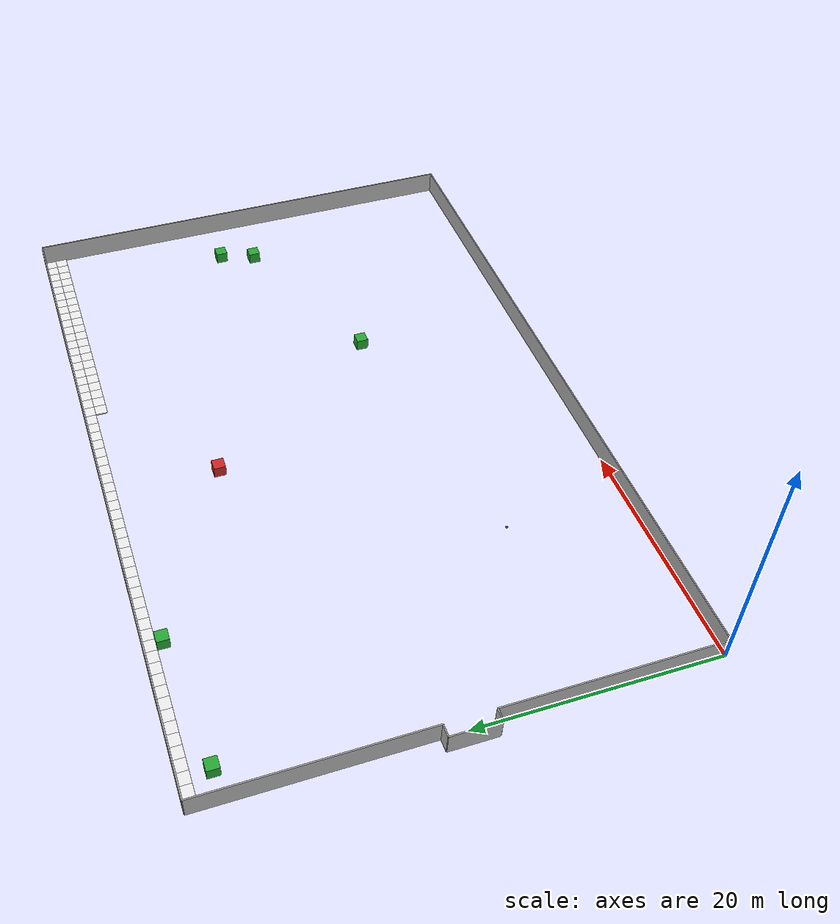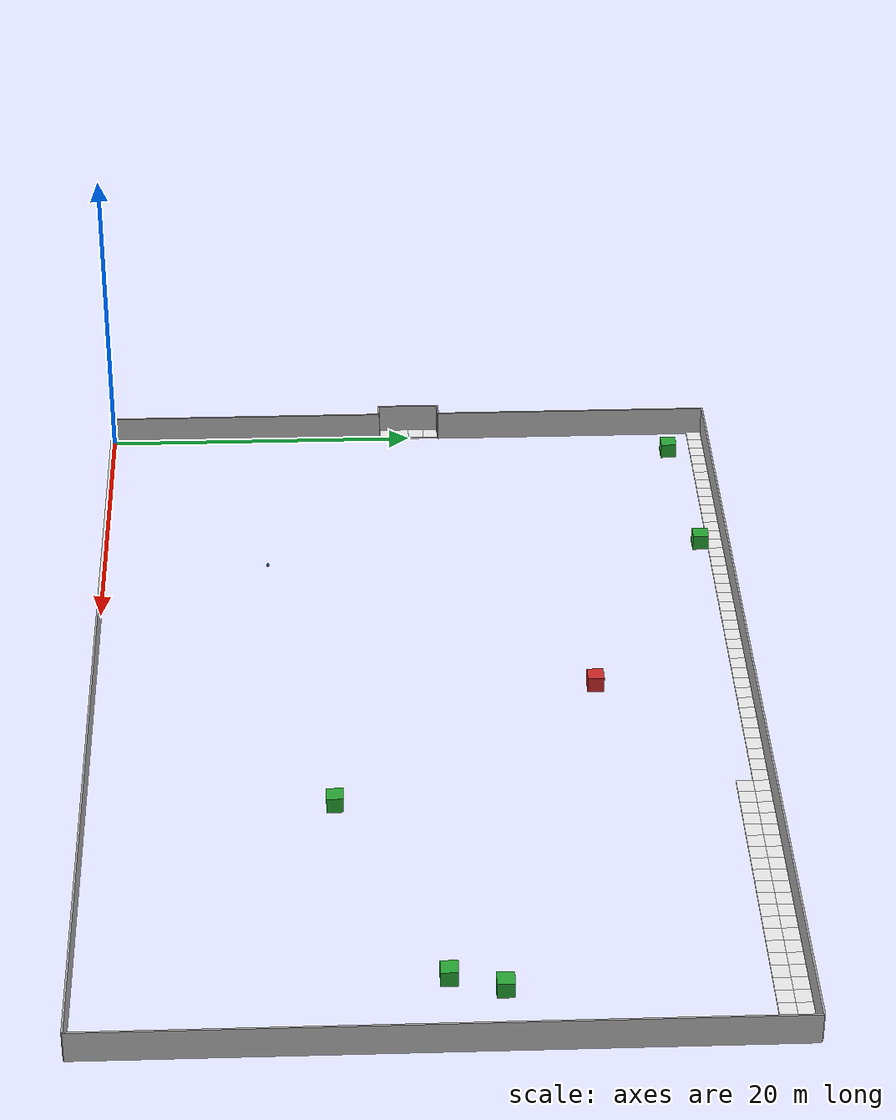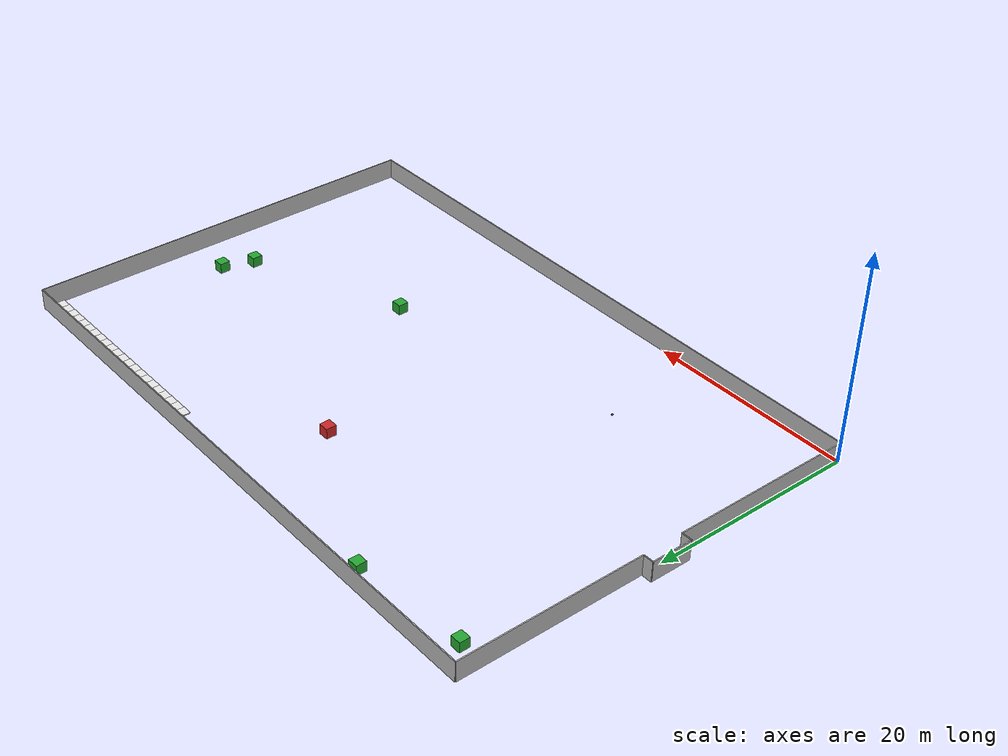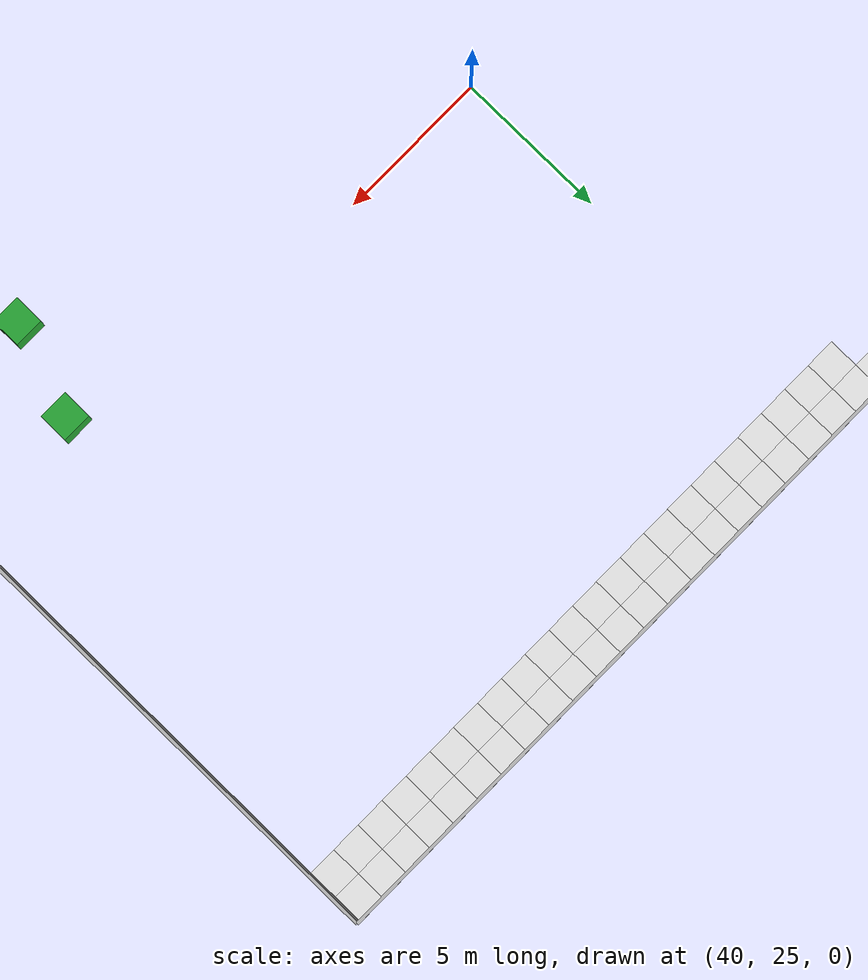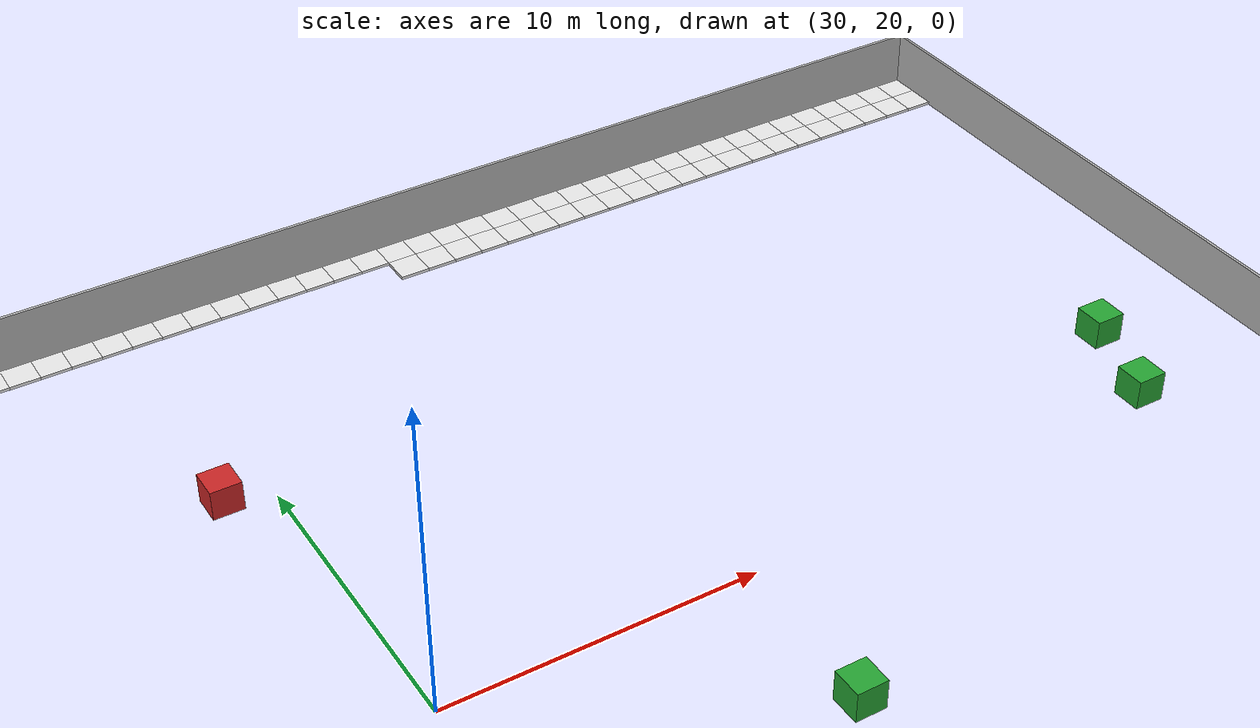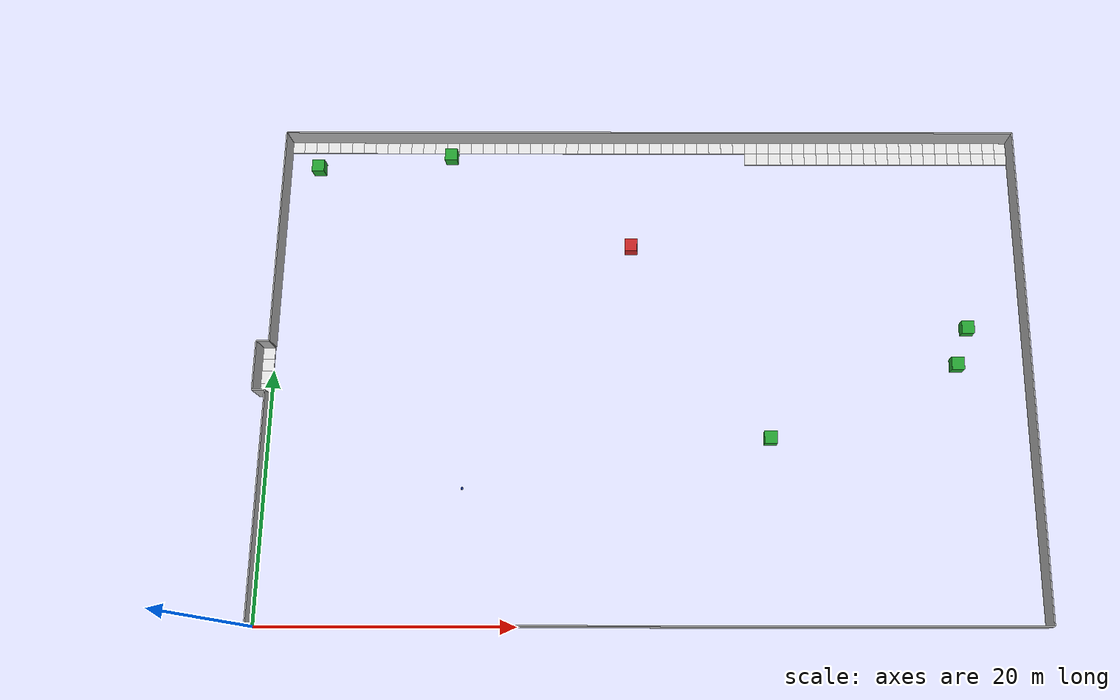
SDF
<sdf version="1.6">
 <world name="grid_world">
  <model name="cell_38_38">
   <static>true</static>
   <link name="link">
    <collision name="collision"><geometry><box><size>1 1 0.1</size></box></geometry></collision>
    <visual name="visual">
     <geometry><box><size>1 1 0.1</size></box></geometry>
     <material>
      <script><uri>file://media/materials/scripts/gazebo.material</uri><name>Gazebo/White</name></script>
     </material>
    </visual>
    <pose>38.5 38.5 0.05 0 0 0</pose>
   </link>
  </model>
  <model name="cell_39_38">
   <static>true</static>
   <link name="link">
    <collision name="collision"><geometry><box><size>1 1 0.1</size></box></geometry></collision>
    <visual name="visual">
     <geometry><box><size>1 1 0.1</size></box></geometry>
     <material>
      <script><uri>file://media/materials/scripts/gazebo.material</uri><name>Gazebo/White</name></script>
     </material>
    </visual>
    <pose>39.5 38.5 0.05 0 0 0</pose>
   </link>
  </model>
  <model name="cell_40_38">
   <static>true</static>
   <link name="link">
    <collision name="collision"><geometry><box><size>1 1 0.1</size></box></geometry></collision>
    <visual name="visual">
     <geometry><box><size>1 1 0.1</size></box></geometry>
     <material>
      <script><uri>file://media/materials/scripts/gazebo.material</uri><name>Gazebo/White</name></script>
     </material>
    </visual>
    <pose>40.5 38.5 0.05 0 0 0</pose>
   </link>
  </model>
  <model name="cell_41_38">
   <static>true</static>
   <link name="link">
    <collision name="collision"><geometry><box><size>1 1 0.1</size></box></geometry></collision>
    <visual name="visual">
     <geometry><box><size>1 1 0.1</size></box></geometry>
     <material>
      <script><uri>file://media/materials/scripts/gazebo.material</uri><name>Gazebo/White</name></script>
     </material>
    </visual>
    <pose>41.5 38.5 0.05 0 0 0</pose>
   </link>
  </model>
  <model name="cell_42_38">
   <static>true</static>
   <link name="link">
    <collision name="collision"><geometry><box><size>1 1 0.1</size></box></geometry></collision>
    <visual name="visual">
     <geometry><box><size>1 1 0.1</size></box></geometry>
     <material>
      <script><uri>file://media/materials/scripts/gazebo.material</uri><name>Gazebo/White</name></script>
     </material>
    </visual>
    <pose>42.5 38.5 0.05 0 0 0</pose>
   </link>
  </model>
  <model name="cell_43_38">
   <static>true</static>
   <link name="link">
    <collision name="collision"><geometry><box><size>1 1 0.1</size></box></geometry></collision>
    <visual name="visual">
     <geometry><box><size>1 1 0.1</size></box></geometry>
     <material>
      <script><uri>file://media/materials/scripts/gazebo.material</uri><name>Gazebo/White</name></script>
     </material>
    </visual>
    <pose>43.5 38.5 0.05 0 0 0</pose>
   </link>
  </model>
  <model name="cell_44_38">
   <static>true</static>
   <link name="link">
    <collision name="collision"><geometry><box><size>1 1 0.1</size></box></geometry></collision>
    <visual name="visual">
     <geometry><box><size>1 1 0.1</size></box></geometry>
     <material>
      <script><uri>file://media/materials/scripts/gazebo.material</uri><name>Gazebo/White</name></script>
     </material>
    </visual>
    <pose>44.5 38.5 0.05 0 0 0</pose>
   </link>
  </model>
  <model name="cell_45_38">
   <static>true</static>
   <link name="link">
    <collision name="collision"><geometry><box><size>1 1 0.1</size></box></geometry></collision>
    <visual name="visual">
     <geometry><box><size>1 1 0.1</size></box></geometry>
     <material>
      <script><uri>file://media/materials/scripts/gazebo.material</uri><name>Gazebo/White</name></script>
     </material>
    </visual>
    <pose>45.5 38.5 0.05 0 0 0</pose>
   </link>
  </model>
  <model name="cell_46_38">
   <static>true</static>
   <link name="link">
    <collision name="collision"><geometry><box><size>1 1 0.1</size></box></geometry></collision>
    <visual name="visual">
     <geometry><box><size>1 1 0.1</size></box></geometry>
     <material>
      <script><uri>file://media/materials/scripts/gazebo.material</uri><name>Gazebo/White</name></script>
     </material>
    </visual>
    <pose>46.5 38.5 0.05 0 0 0</pose>
   </link>
  </model>
  <model name="cell_47_38">
   <static>true</static>
   <link name="link">
    <collision name="collision"><geometry><box><size>1 1 0.1</size></box></geometry></collision>
    <visual name="visual">
     <geometry><box><size>1 1 0.1</size></box></geometry>
     <material>
      <script><uri>file://media/materials/scripts/gazebo.material</uri><name>Gazebo/White</name></script>
     </material>
    </visual>
    <pose>47.5 38.5 0.05 0 0 0</pose>
   </link>
  </model>
  <model name="cell_48_38">
   <static>true</static>
   <link name="link">
    <collision name="collision"><geometry><box><size>1 1 0.1</size></box></geometry></collision>
    <visual name="visual">
     <geometry><box><size>1 1 0.1</size></box></geometry>
     <material>
      <script><uri>file://media/materials/scripts/gazebo.material</uri><name>Gazebo/White</name></script>
     </material>
    </visual>
    <pose>48.5 38.5 0.05 0 0 0</pose>
   </link>
  </model>
  <model name="cell_49_38">
   <static>true</static>
   <link name="link">
    <collision name="collision"><geometry><box><size>1 1 0.1</size></box></geometry></collision>
    <visual name="visual">
     <geometry><box><size>1 1 0.1</size></box></geometry>
     <material>
      <script><uri>file://media/materials/scripts/gazebo.material</uri><name>Gazebo/White</name></script>
     </material>
    </visual>
    <pose>49.5 38.5 0.05 0 0 0</pose>
   </link>
  </model>
  <model name="cell_50_38">
   <static>true</static>
   <link name="link">
    <collision name="collision"><geometry><box><size>1 1 0.1</size></box></geometry></collision>
    <visual name="visual">
     <geometry><box><size>1 1 0.1</size></box></geometry>
     <material>
      <script><uri>file://media/materials/scripts/gazebo.material</uri><name>Gazebo/White</name></script>
     </material>
    </visual>
    <pose>50.5 38.5 0.05 0 0 0</pose>
   </link>
  </model>
  <model name="cell_51_38">
   <static>true</static>
   <link name="link">
    <collision name="collision"><geometry><box><size>1 1 0.1</size></box></geometry></collision>
    <visual name="visual">
     <geometry><box><size>1 1 0.1</size></box></geometry>
     <material>
      <script><uri>file://media/materials/scripts/gazebo.material</uri><name>Gazebo/White</name></script>
     </material>
    </visual>
    <pose>51.5 38.5 0.05 0 0 0</pose>
   </link>
  </model>
  <model name="cell_52_38">
   <static>true</static>
   <link name="link">
    <collision name="collision"><geometry><box><size>1 1 0.1</size></box></geometry></collision>
    <visual name="visual">
     <geometry><box><size>1 1 0.1</size></box></geometry>
     <material>
      <script><uri>file://media/materials/scripts/gazebo.material</uri><name>Gazebo/White</name></script>
     </material>
    </visual>
    <pose>52.5 38.5 0.05 0 0 0</pose>
   </link>
  </model>
  <model name="cell_53_38">
   <static>true</static>
   <link name="link">
    <collision name="collision"><geometry><box><size>1 1 0.1</size></box></geometry></collision>
    <visual name="visual">
     <geometry><box><size>1 1 0.1</size></box></geometry>
     <material>
      <script><uri>file://media/materials/scripts/gazebo.material</uri><name>Gazebo/White</name></script>
     </material>
    </visual>
    <pose>53.5 38.5 0.05 0 0 0</pose>
   </link>
  </model>
  <model name="cell_54_38">
   <static>true</static>
   <link name="link">
    <collision name="collision"><geometry><box><size>1 1 0.1</size></box></geometry></collision>
    <visual name="visual">
     <geometry><box><size>1 1 0.1</size></box></geometry>
     <material>
      <script><uri>file://media/materials/scripts/gazebo.material</uri><name>Gazebo/White</name></script>
     </material>
    </visual>
    <pose>54.5 38.5 0.05 0 0 0</pose>
   </link>
  </model>
  <model name="cell_55_38">
   <static>true</static>
   <link name="link">
    <collision name="collision"><geometry><box><size>1 1 0.1</size></box></geometry></collision>
    <visual name="visual">
     <geometry><box><size>1 1 0.1</size></box></geometry>
     <material>
      <script><uri>file://media/materials/scripts/gazebo.material</uri><name>Gazebo/White</name></script>
     </material>
    </visual>
    <pose>55.5 38.5 0.05 0 0 0</pose>
   </link>
  </model>
  <model name="cell_56_38">
   <static>true</static>
   <link name="link">
    <collision name="collision"><geometry><box><size>1 1 0.1</size></box></geometry></collision>
    <visual name="visual">
     <geometry><box><size>1 1 0.1</size></box></geometry>
     <material>
      <script><uri>file://media/materials/scripts/gazebo.material</uri><name>Gazebo/White</name></script>
     </material>
    </visual>
    <pose>56.5 38.5 0.05 0 0 0</pose>
   </link>
  </model>
  <model name="cell_57_38">
   <static>true</static>
   <link name="link">
    <collision name="collision"><geometry><box><size>1 1 0.1</size></box></geometry></collision>
    <visual name="visual">
     <geometry><box><size>1 1 0.1</size></box></geometry>
     <material>
      <script><uri>file://media/materials/scripts/gazebo.material</uri><name>Gazebo/White</name></script>
     </material>
    </visual>
    <pose>57.5 38.5 0.05 0 0 0</pose>
   </link>
  </model>
  <model name="cell_58_38">
   <static>true</static>
   <link name="link">
    <collision name="collision"><geometry><box><size>1 1 0.1</size></box></geometry></collision>
    <visual name="visual">
     <geometry><box><size>1 1 0.1</size></box></geometry>
     <material>
      <script><uri>file://media/materials/scripts/gazebo.material</uri><name>Gazebo/White</name></script>
     </material>
    </visual>
    <pose>58.5 38.5 0.05 0 0 0</pose>
   </link>
  </model>
  <model name="cell_59_38">
   <static>true</static>
   <link name="link">
    <collision name="collision"><geometry><box><size>1 1 0.1</size></box></geometry></collision>
    <visual name="visual">
     <geometry><box><size>1 1 0.1</size></box></geometry>
     <material>
      <script><uri>file://media/materials/scripts/gazebo.material</uri><name>Gazebo/White</name></script>
     </material>
    </visual>
    <pose>59.5 38.5 0.05 0 0 0</pose>
   </link>
  </model>
  <model name="cell_0_39">
   <static>true</static>
   <link name="link">
    <collision name="collision"><geometry><box><size>1 1 0.1</size></box></geometry></collision>
    <visual name="visual">
     <geometry><box><size>1 1 0.1</size></box></geometry>
     <material>
      <script><uri>file://media/materials/scripts/gazebo.material</uri><name>Gazebo/White</name></script>
     </material>
    </visual>
    <pose>0.5 39.5 0.05 0 0 0</pose>
   </link>
  </model>
  <model name="cell_1_39">
   <static>true</static>
   <link name="link">
    <collision name="collision"><geometry><box><size>1 1 0.1</size></box></geometry></collision>
    <visual name="visual">
     <geometry><box><size>1 1 0.1</size></box></geometry>
     <material>
      <script><uri>file://media/materials/scripts/gazebo.material</uri><name>Gazebo/White</name></script>
     </material>
    </visual>
    <pose>1.5 39.5 0.05 0 0 0</pose>
   </link>
  </model>
  <model name="cell_2_39">
   <static>true</static>
   <link name="link">
    <collision name="collision"><geometry><box><size>1 1 0.1</size></box></geometry></collision>
    <visual name="visual">
     <geometry><box><size>1 1 0.1</size></box></geometry>
     <material>
      <script><uri>file://media/materials/scripts/gazebo.material</uri><name>Gazebo/White</name></script>
     </material>
    </visual>
    <pose>2.5 39.5 0.05 0 0 0</pose>
   </link>
  </model>
  <model name="cell_3_39">
   <static>true</static>
   <link name="link">
    <collision name="collision"><geometry><box><size>1 1 0.1</size></box></geometry></collision>
    <visual name="visual">
     <geometry><box><size>1 1 0.1</size></box></geometry>
     <material>
      <script><uri>file://media/materials/scripts/gazebo.material</uri><name>Gazebo/White</name></script>
     </material>
    </visual>
    <pose>3.5 39.5 0.05 0 0 0</pose>
   </link>
  </model>
  <model name="cell_4_39">
   <static>true</static>
   <link name="link">
    <collision name="collision"><geometry><box><size>1 1 0.1</size></box></geometry></collision>
    <visual name="visual">
     <geometry><box><size>1 1 0.1</size></box></geometry>
     <material>
      <script><uri>file://media/materials/scripts/gazebo.material</uri><name>Gazebo/White</name></script>
     </material>
    </visual>
    <pose>4.5 39.5 0.05 0 0 0</pose>
   </link>
  </model>
  <model name="cell_5_39">
   <static>true</static>
   <link name="link">
    <collision name="collision"><geometry><box><size>1 1 0.1</size></box></geometry></collision>
    <visual name="visual">
     <geometry><box><size>1 1 0.1</size></box></geometry>
     <material>
      <script><uri>file://media/materials/scripts/gazebo.material</uri><name>Gazebo/White</name></script>
     </material>
    </visual>
    <pose>5.5 39.5 0.05 0 0 0</pose>
   </link>
  </model>
  <model name="cell_6_39">
   <static>true</static>
   <link name="link">
    <collision name="collision"><geometry><box><size>1 1 0.1</size></box></geometry></collision>
    <visual name="visual">
     <geometry><box><size>1 1 0.1</size></box></geometry>
     <material>
      <script><uri>file://media/materials/scripts/gazebo.material</uri><name>Gazebo/White</name></script>
     </material>
    </visual>
    <pose>6.5 39.5 0.05 0 0 0</pose>
   </link>
  </model>
  <model name="cell_7_39">
   <static>true</static>
   <link name="link">
    <collision name="collision"><geometry><box><size>1 1 0.1</size></box></geometry></collision>
    <visual name="visual">
     <geometry><box><size>1 1 0.1</size></box></geometry>
     <material>
      <script><uri>file://media/materials/scripts/gazebo.material</uri><name>Gazebo/White</name></script>
     </material>
    </visual>
    <pose>7.5 39.5 0.05 0 0 0</pose>
   </link>
  </model>
  <model name="cell_8_39">
   <static>true</static>
   <link name="link">
    <collision name="collision"><geometry><box><size>1 1 0.1</size></box></geometry></collision>
    <visual name="visual">
     <geometry><box><size>1 1 0.1</size></box></geometry>
     <material>
      <script><uri>file://media/materials/scripts/gazebo.material</uri><name>Gazebo/White</name></script>
     </material>
    </visual>
    <pose>8.5 39.5 0.05 0 0 0</pose>
   </link>
  </model>
  <model name="cell_9_39">
   <static>true</static>
   <link name="link">
    <collision name="collision"><geometry><box><size>1 1 0.1</size></box></geometry></collision>
    <visual name="visual">
     <geometry><box><size>1 1 0.1</size></box></geometry>
     <material>
      <script><uri>file://media/materials/scripts/gazebo.material</uri><name>Gazebo/White</name></script>
     </material>
    </visual>
    <pose>9.5 39.5 0.05 0 0 0</pose>
   </link>
  </model>
  <model name="cell_10_39">
   <static>true</static>
   <link name="link">
    <collision name="collision"><geometry><box><size>1 1 0.1</size></box></geometry></collision>
    <visual name="visual">
     <geometry><box><size>1 1 0.1</size></box></geometry>
     <material>
      <script><uri>file://media/materials/scripts/gazebo.material</uri><name>Gazebo/White</name></script>
     </material>
    </visual>
    <pose>10.5 39.5 0.05 0 0 0</pose>
   </link>
  </model>
  <model name="cell_11_39">
   <static>true</static>
   <link name="link">
    <collision name="collision"><geometry><box><size>1 1 0.1</size></box></geometry></collision>
    <visual name="visual">
     <geometry><box><size>1 1 0.1</size></box></geometry>
     <material>
      <script><uri>file://media/materials/scripts/gazebo.material</uri><name>Gazebo/White</name></script>
     </material>
    </visual>
    <pose>11.5 39.5 0.05 0 0 0</pose>
   </link>
  </model>
  <model name="cell_12_39">
   <static>true</static>
   <link name="link">
    <collision name="collision"><geometry><box><size>1 1 0.1</size></box></geometry></collision>
    <visual name="visual">
     <geometry><box><size>1 1 0.1</size></box></geometry>
     <material>
      <script><uri>file://media/materials/scripts/gazebo.material</uri><name>Gazebo/White</name></script>
     </material>
    </visual>
    <pose>12.5 39.5 0.05 0 0 0</pose>
   </link>
  </model>
  <model name="cell_13_39">
   <static>true</static>
   <link name="link">
    <collision name="collision"><geometry><box><size>1 1 0.1</size></box></geometry></collision>
    <visual name="visual">
     <geometry><box><size>1 1 0.1</size></box></geometry>
     <material>
      <script><uri>file://media/materials/scripts/gazebo.material</uri><name>Gazebo/White</name></script>
     </material>
    </visual>
    <pose>13.5 39.5 0.05 0 0 0</pose>
   </link>
  </model>
  <model name="cell_14_39">
   <static>true</static>
   <link name="link">
    <collision name="collision"><geometry><box><size>1 1 0.1</size></box></geometry></collision>
    <visual name="visual">
     <geometry><box><size>1 1 0.1</size></box></geometry>
     <material>
      <script><uri>file://media/materials/scripts/gazebo.material</uri><name>Gazebo/White</name></script>
     </material>
    </visual>
    <pose>14.5 39.5 0.05 0 0 0</pose>
   </link>
  </model>
  <model name="cell_15_39">
   <static>true</static>
   <link name="link">
    <collision name="collision"><geometry><box><size>1 1 0.1</size></box></geometry></collision>
    <visual name="visual">
     <geometry><box><size>1 1 0.1</size></box></geometry>
     <material>
      <script><uri>file://media/materials/scripts/gazebo.material</uri><name>Gazebo/White</name></script>
     </material>
    </visual>
    <pose>15.5 39.5 0.05 0 0 0</pose>
   </link>
  </model>
  <model name="cell_16_39">
   <static>true</static>
   <link name="link">
    <collision name="collision"><geometry><box><size>1 1 0.1</size></box></geometry></collision>
    <visual name="visual">
     <geometry><box><size>1 1 0.1</size></box></geometry>
     <material>
      <script><uri>file://media/materials/scripts/gazebo.material</uri><name>Gazebo/White</name></script>
     </material>
    </visual>
    <pose>16.5 39.5 0.05 0 0 0</pose>
   </link>
  </model>
  <model name="cell_17_39">
   <static>true</static>
   <link name="link">
    <collision name="collision"><geometry><box><size>1 1 0.1</size></box></geometry></collision>
    <visual name="visual">
     <geometry><box><size>1 1 0.1</size></box></geometry>
     <material>
      <script><uri>file://media/materials/scripts/gazebo.material</uri><name>Gazebo/White</name></script>
     </material>
    </visual>
    <pose>17.5 39.5 0.05 0 0 0</pose>
   </link>
  </model>
  <model name="cell_18_39">
   <static>true</static>
   <link name="link">
    <collision name="collision"><geometry><box><size>1 1 0.1</size></box></geometry></collision>
    <visual name="visual">
     <geometry><box><size>1 1 0.1</size></box></geometry>
     <material>
      <script><uri>file://media/materials/scripts/gazebo.material</uri><name>Gazebo/White</name></script>
     </material>
    </visual>
    <pose>18.5 39.5 0.05 0 0 0</pose>
   </link>
  </model>
  <model name="cell_19_39">
   <static>true</static>
   <link name="link">
    <collision name="collision"><geometry><box><size>1 1 0.1</size></box></geometry></collision>
    <visual name="visual">
     <geometry><box><size>1 1 0.1</size></box></geometry>
     <material>
      <script><uri>file://media/materials/scripts/gazebo.material</uri><name>Gazebo/White</name></script>
     </material>
    </visual>
    <pose>19.5 39.5 0.05 0 0 0</pose>
   </link>
  </model>
  <model name="cell_20_39">
   <static>true</static>
   <link name="link">
    <collision name="collision"><geometry><box><size>1 1 0.1</size></box></geometry></collision>
    <visual name="visual">
     <geometry><box><size>1 1 0.1</size></box></geometry>
     <material>
      <script><uri>file://media/materials/scripts/gazebo.material</uri><name>Gazebo/White</name></script>
     </material>
    </visual>
    <pose>20.5 39.5 0.05 0 0 0</pose>
   </link>
  </model>
  <model name="cell_21_39">
   <static>true</static>
   <link name="link">
    <collision name="collision"><geometry><box><size>1 1 0.1</size></box></geometry></collision>
    <visual name="visual">
     <geometry><box><size>1 1 0.1</size></box></geometry>
     <material>
      <script><uri>file://media/materials/scripts/gazebo.material</uri><name>Gazebo/White</name></script>
     </material>
    </visual>
    <pose>21.5 39.5 0.05 0 0 0</pose>
   </link>
  </model>
  <model name="cell_22_39">
   <static>true</static>
   <link name="link">
    <collision name="collision"><geometry><box><size>1 1 0.1</size></box></geometry></collision>
    <visual name="visual">
     <geometry><box><size>1 1 0.1</size></box></geometry>
     <material>
      <script><uri>file://media/materials/scripts/gazebo.material</uri><name>Gazebo/White</name></script>
     </material>
    </visual>
    <pose>22.5 39.5 0.05 0 0 0</pose>
   </link>
  </model>
  <model name="cell_23_39">
   <static>true</static>
   <link name="link">
    <collision name="collision"><geometry><box><size>1 1 0.1</size></box></geometry></collision>
    <visual name="visual">
     <geometry><box><size>1 1 0.1</size></box></geometry>
     <material>
      <script><uri>file://media/materials/scripts/gazebo.material</uri><name>Gazebo/White</name></script>
     </material>
    </visual>
    <pose>23.5 39.5 0.05 0 0 0</pose>
   </link>
  </model>
  <model name="cell_24_39">
   <static>true</static>
   <link name="link">
    <collision name="collision"><geometry><box><size>1 1 0.1</size></box></geometry></collision>
    <visual name="visual">
     <geometry><box><size>1 1 0.1</size></box></geometry>
     <material>
      <script><uri>file://media/materials/scripts/gazebo.material</uri><name>Gazebo/White</name></script>
     </material>
    </visual>
    <pose>24.5 39.5 0.05 0 0 0</pose>
   </link>
  </model>
  <model name="cell_25_39">
   <static>true</static>
   <link name="link">
    <collision name="collision"><geometry><box><size>1 1 0.1</size></box></geometry></collision>
    <visual name="visual">
     <geometry><box><size>1 1 0.1</size></box></geometry>
     <material>
      <script><uri>file://media/materials/scripts/gazebo.material</uri><name>Gazebo/White</name></script>
     </material>
    </visual>
    <pose>25.5 39.5 0.05 0 0 0</pose>
   </link>
  </model>
  <model name="cell_26_39">
   <static>true</static>
   <link name="link">
    <collision name="collision"><geometry><box><size>1 1 0.1</size></box></geometry></collision>
    <visual name="visual">
     <geometry><box><size>1 1 0.1</size></box></geometry>
     <material>
      <script><uri>file://media/materials/scripts/gazebo.material</uri><name>Gazebo/White</name></script>
     </material>
    </visual>
    <pose>26.5 39.5 0.05 0 0 0</pose>
   </link>
  </model>
  <model name="cell_27_39">
   <static>true</static>
   <link name="link">
    <collision name="collision"><geometry><box><size>1 1 0.1</size></box></geometry></collision>
    <visual name="visual">
     <geometry><box><size>1 1 0.1</size></box></geometry>
     <material>
      <script><uri>file://media/materials/scripts/gazebo.material</uri><name>Gazebo/White</name></script>
     </material>
    </visual>
    <pose>27.5 39.5 0.05 0 0 0</pose>
   </link>
  </model>
  <model name="cell_28_39">
   <static>true</static>
   <link name="link">
    <collision name="collision"><geometry><box><size>1 1 0.1</size></box></geometry></collision>
    <visual name="visual">
     <geometry><box><size>1 1 0.1</size></box></geometry>
     <material>
      <script><uri>file://media/materials/scripts/gazebo.material</uri><name>Gazebo/White</name></script>
     </material>
    </visual>
    <pose>28.5 39.5 0.05 0 0 0</pose>
   </link>
  </model>
  <model name="cell_29_39">
   <static>true</static>
   <link name="link">
    <collision name="collision"><geometry><box><size>1 1 0.1</size></box></geometry></collision>
    <visual name="visual">
     <geometry><box><size>1 1 0.1</size></box></geometry>
     <material>
      <script><uri>file://media/materials/scripts/gazebo.material</uri><name>Gazebo/White</name></script>
     </material>
    </visual>
    <pose>29.5 39.5 0.05 0 0 0</pose>
   </link>
  </model>
  <model name="cell_30_39">
   <static>true</static>
   <link name="link">
    <collision name="collision"><geometry><box><size>1 1 0.1</size></box></geometry></collision>
    <visual name="visual">
     <geometry><box><size>1 1 0.1</size></box></geometry>
     <material>
      <script><uri>file://media/materials/scripts/gazebo.material</uri><name>Gazebo/White</name></script>
     </material>
    </visual>
    <pose>30.5 39.5 0.05 0 0 0</pose>
   </link>
  </model>
  <model name="cell_31_39">
   <static>true</static>
   <link name="link">
    <collision name="collision"><geometry><box><size>1 1 0.1</size></box></geometry></collision>
    <visual name="visual">
     <geometry><box><size>1 1 0.1</size></box></geometry>
     <material>
      <script><uri>file://media/materials/scripts/gazebo.material</uri><name>Gazebo/White</name></script>
     </material>
    </visual>
    <pose>31.5 39.5 0.05 0 0 0</pose>
   </link>
  </model>
  <model name="cell_32_39">
   <static>true</static>
   <link name="link">
    <collision name="collision"><geometry><box><size>1 1 0.1</size></box></geometry></collision>
    <visual name="visual">
     <geometry><box><size>1 1 0.1</size></box></geometry>
     <material>
      <script><uri>file://media/materials/scripts/gazebo.material</uri><name>Gazebo/White</name></script>
     </material>
    </visual>
    <pose>32.5 39.5 0.05 0 0 0</pose>
   </link>
  </model>
  <model name="cell_33_39">
   <static>true</static>
   <link name="link">
    <collision name="collision"><geometry><box><size>1 1 0.1</size></box></geometry></collision>
    <visual name="visual">
     <geometry><box><size>1 1 0.1</size></box></geometry>
     <material>
      <script><uri>file://media/materials/scripts/gazebo.material</uri><name>Gazebo/White</name></script>
     </material>
    </visual>
    <pose>33.5 39.5 0.05 0 0 0</pose>
   </link>
  </model>
  <model name="cell_34_39">
   <static>true</static>
   <link name="link">
    <collision name="collision"><geometry><box><size>1 1 0.1</size></box></geometry></collision>
    <visual name="visual">
     <geometry><box><size>1 1 0.1</size></box></geometry>
     <material>
      <script><uri>file://media/materials/scripts/gazebo.material</uri><name>Gazebo/White</name></script>
     </material>
    </visual>
    <pose>34.5 39.5 0.05 0 0 0</pose>
   </link>
  </model>
  <model name="cell_35_39">
   <static>true</static>
   <link name="link">
    <collision name="collision"><geometry><box><size>1 1 0.1</size></box></geometry></collision>
    <visual name="visual">
     <geometry><box><size>1 1 0.1</size></box></geometry>
     <material>
      <script><uri>file://media/materials/scripts/gazebo.material</uri><name>Gazebo/White</name></script>
     </material>
    </visual>
    <pose>35.5 39.5 0.05 0 0 0</pose>
   </link>
  </model>
  <model name="cell_36_39">
   <static>true</static>
   <link name="link">
    <collision name="collision"><geometry><box><size>1 1 0.1</size></box></geometry></collision>
    <visual name="visual">
     <geometry><box><size>1 1 0.1</size></box></geometry>
     <material>
      <script><uri>file://media/materials/scripts/gazebo.material</uri><name>Gazebo/White</name></script>
     </material>
    </visual>
    <pose>36.5 39.5 0.05 0 0 0</pose>
   </link>
  </model>
  <model name="cell_37_39">
   <static>true</static>
   <link name="link">
    <collision name="collision"><geometry><box><size>1 1 0.1</size></box></geometry></collision>
    <visual name="visual">
     <geometry><box><size>1 1 0.1</size></box></geometry>
     <material>
      <script><uri>file://media/materials/scripts/gazebo.material</uri><name>Gazebo/White</name></script>
     </material>
    </visual>
    <pose>37.5 39.5 0.05 0 0 0</pose>
   </link>
  </model>
  <model name="cell_38_39">
   <static>true</static>
   <link name="link">
    <collision name="collision"><geometry><box><size>1 1 0.1</size></box></geometry></collision>
    <visual name="visual">
     <geometry><box><size>1 1 0.1</size></box></geometry>
     <material>
      <script><uri>file://media/materials/scripts/gazebo.material</uri><name>Gazebo/White</name></script>
     </material>
    </visual>
    <pose>38.5 39.5 0.05 0 0 0</pose>
   </link>
  </model>
  <model name="cell_39_39">
   <static>true</static>
   <link name="link">
    <collision name="collision"><geometry><box><size>1 1 0.1</size></box></geometry></collision>
    <visual name="visual">
     <geometry><box><size>1 1 0.1</size></box></geometry>
     <material>
      <script><uri>file://media/materials/scripts/gazebo.material</uri><name>Gazebo/White</name></script>
     </material>
    </visual>
    <pose>39.5 39.5 0.05 0 0 0</pose>
   </link>
  </model>
  <model name="cell_40_39">
   <static>true</static>
   <link name="link">
    <collision name="collision"><geometry><box><size>1 1 0.1</size></box></geometry></collision>
    <visual name="visual">
     <geometry><box><size>1 1 0.1</size></box></geometry>
     <material>
      <script><uri>file://media/materials/scripts/gazebo.material</uri><name>Gazebo/White</name></script>
     </material>
    </visual>
    <pose>40.5 39.5 0.05 0 0 0</pose>
   </link>
  </model>
  <model name="cell_41_39">
   <static>true</static>
   <link name="link">
    <collision name="collision"><geometry><box><size>1 1 0.1</size></box></geometry></collision>
    <visual name="visual">
     <geometry><box><size>1 1 0.1</size></box></geometry>
     <material>
      <script><uri>file://media/materials/scripts/gazebo.material</uri><name>Gazebo/White</name></script>
     </material>
    </visual>
    <pose>41.5 39.5 0.05 0 0 0</pose>
   </link>
  </model>
  <model name="cell_42_39">
   <static>true</static>
   <link name="link">
    <collision name="collision"><geometry><box><size>1 1 0.1</size></box></geometry></collision>
    <visual name="visual">
     <geometry><box><size>1 1 0.1</size></box></geometry>
     <material>
      <script><uri>file://media/materials/scripts/gazebo.material</uri><name>Gazebo/White</name></script>
     </material>
    </visual>
    <pose>42.5 39.5 0.05 0 0 0</pose>
   </link>
  </model>
  <model name="cell_43_39">
   <static>true</static>
   <link name="link">
    <collision name="collision"><geometry><box><size>1 1 0.1</size></box></geometry></collision>
    <visual name="visual">
     <geometry><box><size>1 1 0.1</size></box></geometry>
     <material>
      <script><uri>file://media/materials/scripts/gazebo.material</uri><name>Gazebo/White</name></script>
     </material>
    </visual>
    <pose>43.5 39.5 0.05 0 0 0</pose>
   </link>
  </model>
  <model name="cell_44_39">
   <static>true</static>
   <link name="link">
    <collision name="collision"><geometry><box><size>1 1 0.1</size></box></geometry></collision>
    <visual name="visual">
     <geometry><box><size>1 1 0.1</size></box></geometry>
     <material>
      <script><uri>file://media/materials/scripts/gazebo.material</uri><name>Gazebo/White</name></script>
     </material>
    </visual>
    <pose>44.5 39.5 0.05 0 0 0</pose>
   </link>
  </model>
  <model name="cell_45_39">
   <static>true</static>
   <link name="link">
    <collision name="collision"><geometry><box><size>1 1 0.1</size></box></geometry></collision>
    <visual name="visual">
     <geometry><box><size>1 1 0.1</size></box></geometry>
     <material>
      <script><uri>file://media/materials/scripts/gazebo.material</uri><name>Gazebo/White</name></script>
     </material>
    </visual>
    <pose>45.5 39.5 0.05 0 0 0</pose>
   </link>
  </model>
  <model name="cell_46_39">
   <static>true</static>
   <link name="link">
    <collision name="collision"><geometry><box><size>1 1 0.1</size></box></geometry></collision>
    <visual name="visual">
     <geometry><box><size>1 1 0.1</size></box></geometry>
     <material>
      <script><uri>file://media/materials/scripts/gazebo.material</uri><name>Gazebo/White</name></script>
     </material>
    </visual>
    <pose>46.5 39.5 0.05 0 0 0</pose>
   </link>
  </model>
  <model name="cell_47_39">
   <static>true</static>
   <link name="link">
    <collision name="collision"><geometry><box><size>1 1 0.1</size></box></geometry></collision>
    <visual name="visual">
     <geometry><box><size>1 1 0.1</size></box></geometry>
     <material>
      <script><uri>file://media/materials/scripts/gazebo.material</uri><name>Gazebo/White</name></script>
     </material>
    </visual>
    <pose>47.5 39.5 0.05 0 0 0</pose>
   </link>
  </model>
  <model name="cell_48_39">
   <static>true</static>
   <link name="link">
    <collision name="collision"><geometry><box><size>1 1 0.1</size></box></geometry></collision>
    <visual name="visual">
     <geometry><box><size>1 1 0.1</size></box></geometry>
     <material>
      <script><uri>file://media/materials/scripts/gazebo.material</uri><name>Gazebo/White</name></script>
     </material>
    </visual>
    <pose>48.5 39.5 0.05 0 0 0</pose>
   </link>
  </model>
  <model name="cell_49_39">
   <static>true</static>
   <link name="link">
    <collision name="collision"><geometry><box><size>1 1 0.1</size></box></geometry></collision>
    <visual name="visual">
     <geometry><box><size>1 1 0.1</size></box></geometry>
     <material>
      <script><uri>file://media/materials/scripts/gazebo.material</uri><name>Gazebo/White</name></script>
     </material>
    </visual>
    <pose>49.5 39.5 0.05 0 0 0</pose>
   </link>
  </model>
  <model name="cell_50_39">
   <static>true</static>
   <link name="link">
    <collision name="collision"><geometry><box><size>1 1 0.1</size></box></geometry></collision>
    <visual name="visual">
     <geometry><box><size>1 1 0.1</size></box></geometry>
     <material>
      <script><uri>file://media/materials/scripts/gazebo.material</uri><name>Gazebo/White</name></script>
     </material>
    </visual>
    <pose>50.5 39.5 0.05 0 0 0</pose>
   </link>
  </model>
  <model name="cell_51_39">
   <static>true</static>
   <link name="link">
    <collision name="collision"><geometry><box><size>1 1 0.1</size></box></geometry></collision>
    <visual name="visual">
     <geometry><box><size>1 1 0.1</size></box></geometry>
     <material>
      <script><uri>file://media/materials/scripts/gazebo.material</uri><name>Gazebo/White</name></script>
     </material>
    </visual>
    <pose>51.5 39.5 0.05 0 0 0</pose>
   </link>
  </model>
  <model name="cell_52_39">
   <static>true</static>
   <link name="link">
    <collision name="collision"><geometry><box><size>1 1 0.1</size></box></geometry></collision>
    <visual name="visual">
     <geometry><box><size>1 1 0.1</size></box></geometry>
     <material>
      <script><uri>file://media/materials/scripts/gazebo.material</uri><name>Gazebo/White</name></script>
     </material>
    </visual>
    <pose>52.5 39.5 0.05 0 0 0</pose>
   </link>
  </model>
  <model name="cell_53_39">
   <static>true</static>
   <link name="link">
    <collision name="collision"><geometry><box><size>1 1 0.1</size></box></geometry></collision>
    <visual name="visual">
     <geometry><box><size>1 1 0.1</size></box></geometry>
     <material>
      <script><uri>file://media/materials/scripts/gazebo.material</uri><name>Gazebo/White</name></script>
     </material>
    </visual>
    <pose>53.5 39.5 0.05 0 0 0</pose>
   </link>
  </model>
  <model name="cell_54_39">
   <static>true</static>
   <link name="link">
    <collision name="collision"><geometry><box><size>1 1 0.1</size></box></geometry></collision>
    <visual name="visual">
     <geometry><box><size>1 1 0.1</size></box></geometry>
     <material>
      <script><uri>file://media/materials/scripts/gazebo.material</uri><name>Gazebo/White</name></script>
     </material>
    </visual>
    <pose>54.5 39.5 0.05 0 0 0</pose>
   </link>
  </model>
  <model name="cell_55_39">
   <static>true</static>
   <link name="link">
    <collision name="collision"><geometry><box><size>1 1 0.1</size></box></geometry></collision>
    <visual name="visual">
     <geometry><box><size>1 1 0.1</size></box></geometry>
     <material>
      <script><uri>file://media/materials/scripts/gazebo.material</uri><name>Gazebo/White</name></script>
     </material>
    </visual>
    <pose>55.5 39.5 0.05 0 0 0</pose>
   </link>
  </model>
  <model name="cell_56_39">
   <static>true</static>
   <link name="link">
    <collision name="collision"><geometry><box><size>1 1 0.1</size></box></geometry></collision>
    <visual name="visual">
     <geometry><box><size>1 1 0.1</size></box></geometry>
     <material>
      <script><uri>file://media/materials/scripts/gazebo.material</uri><name>Gazebo/White</name></script>
     </material>
    </visual>
    <pose>56.5 39.5 0.05 0 0 0</pose>
   </link>
  </model>
  <model name="cell_57_39">
   <static>true</static>
   <link name="link">
    <collision name="collision"><geometry><box><size>1 1 0.1</size></box></geometry></collision>
    <visual name="visual">
     <geometry><box><size>1 1 0.1</size></box></geometry>
     <material>
      <script><uri>file://media/materials/scripts/gazebo.material</uri><name>Gazebo/White</name></script>
     </material>
    </visual>
    <pose>57.5 39.5 0.05 0 0 0</pose>
   </link>
  </model>
  <model name="cell_58_39">
   <static>true</static>
   <link name="link">
    <collision name="collision"><geometry><box><size>1 1 0.1</size></box></geometry></collision>
    <visual name="visual">
     <geometry><box><size>1 1 0.1</size></box></geometry>
     <material>
      <script><uri>file://media/materials/scripts/gazebo.material</uri><name>Gazebo/White</name></script>
     </material>
    </visual>
    <pose>58.5 39.5 0.05 0 0 0</pose>
   </link>
  </model>
  <model name="cell_59_39">
   <static>true</static>
   <link name="link">
    <collision name="collision"><geometry><box><size>1 1 0.1</size></box></geometry></collision>
    <visual name="visual">
     <geometry><box><size>1 1 0.1</size></box></geometry>
     <material>
      <script><uri>file://media/materials/scripts/gazebo.material</uri><name>Gazebo/White</name></script>
     </material>
    </visual>
    <pose>59.5 39.5 0.05 0 0 0</pose>
   </link>
  </model>
  <model name="cell_-1_18">
   <static>true</static>
   <link name="link">
    <collision name="collision"><geometry><box><size>1 1 0.1</size></box></geometry></collision>
    <visual name="visual">
     <geometry><box><size>1 1 0.1</size></box></geometry>
     <material>
      <script><uri>file://media/materials/scripts/gazebo.material</uri><name>Gazebo/White</name></script>
     </material>
    </visual>
    <pose>-0.5 18.5 0.05 0 0 0</pose>
   </link>
  </model>
  <model name="cell_-1_19">
   <static>true</static>
   <link name="link">
    <collision name="collision"><geometry><box><size>1 1 0.1</size></box></geometry></collision>
    <visual name="visual">
     <geometry><box><size>1 1 0.1</size></box></geometry>
     <material>
      <script><uri>file://media/materials/scripts/gazebo.material</uri><name>Gazebo/White</name></script>
     </material>
    </visual>
    <pose>-0.5 19.5 0.05 0 0 0</pose>
   </link>
  </model>
  <model name="cell_-1_20">
   <static>true</static>
   <link name="link">
    <collision name="collision"><geometry><box><size>1 1 0.1</size></box></geometry></collision>
    <visual name="visual">
     <geometry><box><size>1 1 0.1</size></box></geometry>
     <material>
      <script><uri>file://media/materials/scripts/gazebo.material</uri><name>Gazebo/White</name></script>
     </material>
    </visual>
    <pose>-0.5 20.5 0.05 0 0 0</pose>
   </link>
  </model>
  <model name="cell_-1_21">
   <static>true</static>
   <link name="link">
    <collision name="collision"><geometry><box><size>1 1 0.1</size></box></geometry></collision>
    <visual name="visual">
     <geometry><box><size>1 1 0.1</size></box></geometry>
     <material>
      <script><uri>file://media/materials/scripts/gazebo.material</uri><name>Gazebo/White</name></script>
     </material>
    </visual>
    <pose>-0.5 21.5 0.05 0 0 0</pose>
   </link>
  </model>
  <model name="wall_north">
   <static>true</static>
   <link name="link">
    <collision name="collision">
     <geometry><box><size>60 0.1 2</size></box></geometry>
     <pose>30 40 1 0 0 0</pose>
    </collision>
    <visual name="visual"><geometry><box><size>60 0.1 2</size></box></geometry><pose>30 40 1 0 0 0</pose></visual>
   </link>
  </model>
  <model name="wall_south">
   <static>true</static>
   <link name="link">
    <collision name="collision">
     <geometry><box><size>60 0.1 2</size></box></geometry>
     <pose>30 0 1 0 0 0</pose>
    </collision>
    <visual name="visual"><geometry><box><size>60 0.1 2</size></box></geometry><pose>30 0 1 0 0 0</pose></visual>
   </link>
  </model>
  <model name="wall_east">
   <static>true</static>
   <link name="link">
    <collision name="collision">
     <geometry><box><size>0.1 40 2</size></box></geometry>
     <pose>60 20 1 0 0 0</pose>
    </collision>
    <visual name="visual"><geometry><box><size>0.1 40 2</size></box></geometry><pose>60 20 1 0 0 0</pose></visual>
   </link>
  </model>
  <model name="wall_west_upper">
   <static>true</static>
   <link name="link">
    <collision name="collision">
     <geometry><box><size>0.1 18 2</size></box></geometry>
     <pose>0 31 1 0 0 0</pose>
    </collision>
    <visual name="visual"><geometry><box><size>0.1 18 2</size></box></geometry><pose>0 31 1 0 0 0</pose></visual>
   </link>
  </model>
  <model name="wall_west_middle_inward">
   <static>true</static>
   <link name="link">
    <collision name="collision">
     <geometry><box><size>1 0.1 2</size></box></geometry>
     <pose>-0.5 22 1 0 0 0</pose>
    </collision>
    <visual name="visual">
     <geometry><box><size>1 0.1 2</size></box></geometry>
     <pose>-0.5 22 1 0 0 0</pose>
    </visual>
   </link>
  </model>
  <model name="wall_west_middle_outward">
   <static>true</static>
   <link name="link">
    <collision name="collision">
     <geometry><box><size>0.1 4 2</size></box></geometry>
     <pose>-1 20 1 0 0 0</pose>
    </collision>
    <visual name="visual"><geometry><box><size>0.1 4 2</size></box></geometry><pose>-1 20 1 0 0 0</pose></visual>
   </link>
  </model>
  <model name="wall_west_middle_inward2">
   <static>true</static>
   <link name="link">
    <collision name="collision">
     <geometry><box><size>-1 0.1 2</size></box></geometry>
     <pose>-0.5 18 1 0 0 0</pose>
    </collision>
    <visual name="visual">
     <geometry><box><size>-1 0.1 2</size></box></geometry>
     <pose>-0.5 18 1 0 0 0</pose>
    </visual>
   </link>
  </model>
  <model name="wall_west_lower">
   <static>true</static>
   <link name="link">
    <collision name="collision">
     <geometry><box><size>0.1 18 2</size></box></geometry>
     <pose>0 9 1 0 0 0</pose>
    </collision>
    <visual name="visual"><geometry><box><size>0.1 18 2</size></box></geometry><pose>0 9 1 0 0 0</pose></visual>
   </link>
  </model>
  <model name="object1">
   <pose>13.5 38.5 0.5 0 0 0</pose>
   <static>true</static>
   <link name="link">
    <collision name="collision"><geometry><box><size>1 1 1</size></box></geometry></collision>
    <visual name="visual">
     <geometry><box><size>1 1 1</size></box></geometry>
     <material>
      <script><uri>file://media/materials/scripts/gazebo.material</uri><name>Gazebo/Green</name></script>
     </material>
    </visual>
   </link>
  </model>
  <model name="object2">
   <pose>54.5 20.5 0.5 0 0 0</pose>
   <static>true</static>
   <link name="link">
    <collision name="collision"><geometry><box><size>1 1 1</size></box></geometry></collision>
    <visual name="visual">
     <geometry><box><size>1 1 1</size></box></geometry>
     <material>
      <script><uri>file://media/materials/scripts/gazebo.material</uri><name>Gazebo/Green</name></script>
     </material>
    </visual>
   </link>
  </model>
  <model name="object3">
   <pose>55.5 23.5 0.5 0 0 0</pose>
   <static>true</static>
   <link name="link">
    <collision name="collision"><geometry><box><size>1 1 1</size></box></geometry></collision>
    <visual name="visual">
     <geometry><box><size>1 1 1</size></box></geometry>
     <material>
      <script><uri>file://media/materials/scripts/gazebo.material</uri><name>Gazebo/Green</name></script>
     </material>
    </visual>
   </link>
  </model>
  <model name="object4">
   <pose>2.5 37.5 0.5 0 0 0</pose>
   <static>true</static>
   <link name="link">
    <collision name="collision"><geometry><box><size>1 1 1</size></box></geometry></collision>
    <visual name="visual">
     <geometry><box><size>1 1 1</size></box></geometry>
     <material>
      <script><uri>file://media/materials/scripts/gazebo.material</uri><name>Gazebo/Green</name></script>
     </material>
    </visual>
   </link>
  </model>
  <model name="object5">
   <pose>39.5 14.5 0.5 0 0 0</pose>
   <static>true</static>
   <link name="link">
    <collision name="collision"><geometry><box><size>1 1 1</size></box></geometry></collision>
    <visual name="visual">
     <geometry><box><size>1 1 1</size></box></geometry>
     <material>
      <script><uri>file://media/materials/scripts/gazebo.material</uri><name>Gazebo/Green</name></script>
     </material>
    </visual>
   </link>
  </model>
  <model name="robot">
   <pose>28.5 30.5 0.5 0 0 0</pose>
   <static>true</static>
   <link name="link">
    <collision name="collision"><geometry><box><size>1 1 1</size></box></geometry></collision>
    <visual name="visual">
     <geometry><box><size>1 1 1</size></box></geometry>
     <material>
      <script><uri>file://media/materials/scripts/gazebo.material</uri><name>Gazebo/Red</name></script>
     </material>
    </visual>
   </link>
   <plugin name="diff_drive_controller" filename="libgazebo_ros_diff_drive.so">
    <ros><namespace>/robot</namespace><remapping><remap from="cmd_vel" to="/robot/cmd_vel"/></remapping></ros>
    <robotNamespace>/robot</robotNamespace>
    <updateRate>50</updateRate>
    <leftJoint>left_wheel_joint</leftJoint>
    <rightJoint>right_wheel_joint</rightJoint>
    <wheelSeparation>0.6</wheelSeparation>
    <wheelDiameter>0.2</wheelDiameter>
    <torque>10.0</torque>
   </plugin>
  </model>
  <model name="ball">
   <pose>15.5 10.5 0.5 0 0 0</pose>
   <static>true</static>
   <link name="link">
    <collision name="collision">
     <geometry><sphere><radius>0.5</radius></sphere></geometry>
     <surface>
      <bounce><restitution_coefficient>0.9</restitution_coefficient><threshold>1000.0</threshold></bounce>
     </surface>
    </collision>
    <visual name="visual">
     <geometry><sphere><radius>0.1</radius></sphere></geometry>
     <material>
      <script><uri>file://media/materials/scripts/gazebo.material</uri><name>Gazebo/Blue</name></script>
     </material>
    </visual>
   </link>
   <plugin name="ball_controller" filename="libgazebo_ros_model_push.so">
    <ros><namespace>/ball</namespace><remapping><remap from="cmd_force" to="/ball/cmd_force"/></remapping></ros>
    <topic>/ball/cmd_force</topic>
   </plugin>
  </model>
 </world>
</sdf>
